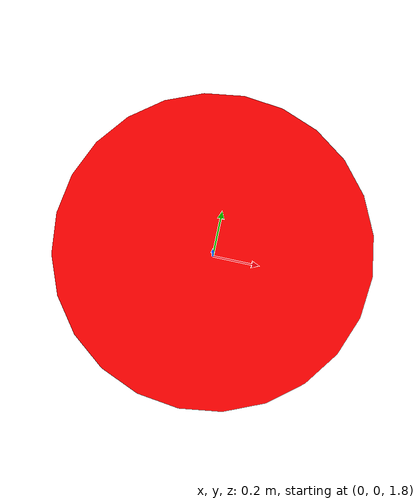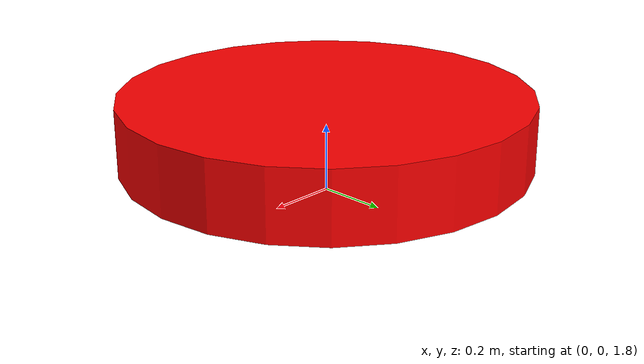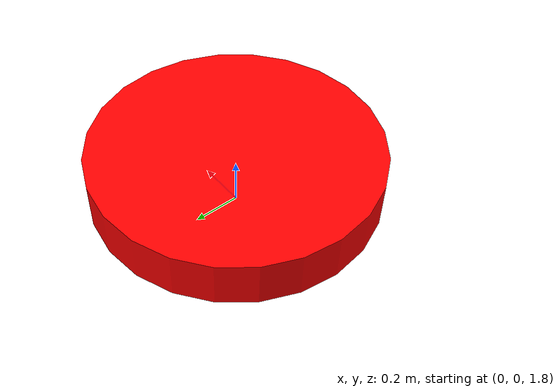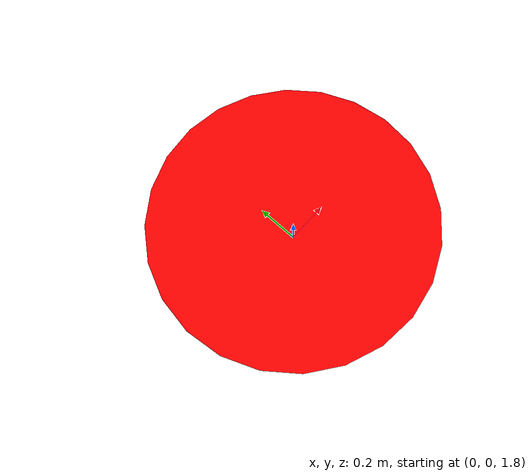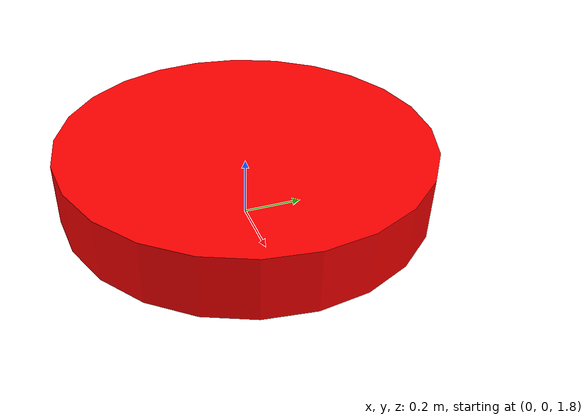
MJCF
<mujoco>
  <option gravity="0 0 -9.81" />
  <worldbody>
    <body name="object_1" pos="0 0 2">
      <geom type="cylinder" size="0.6 0.1" mass="4" rgba="1 0 0 1" />
      <joint name="object_1_joint" type="free" />
    </body>
    <body name="object_2" pos="0 0 -10">
      <geom type="plane" size="30 30 0.1" rgba="0.7 0.7 0.7 1" friction="1 1 1" />
    </body>
  </worldbody>
</mujoco>
